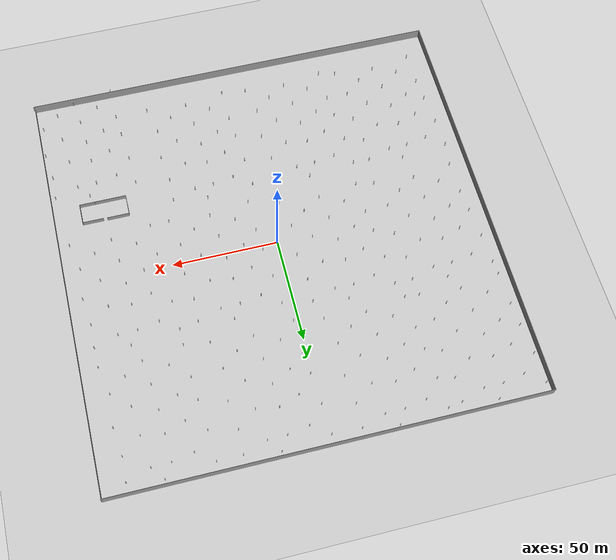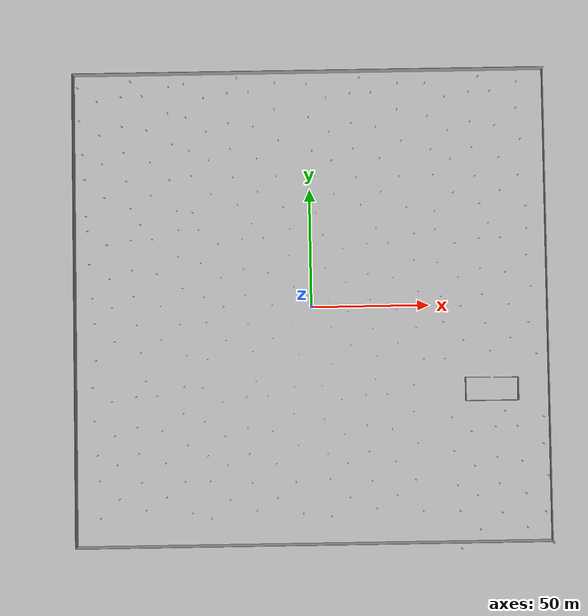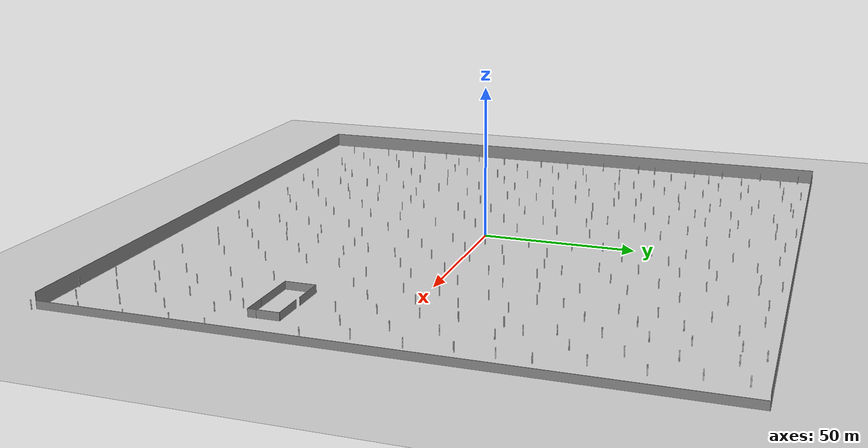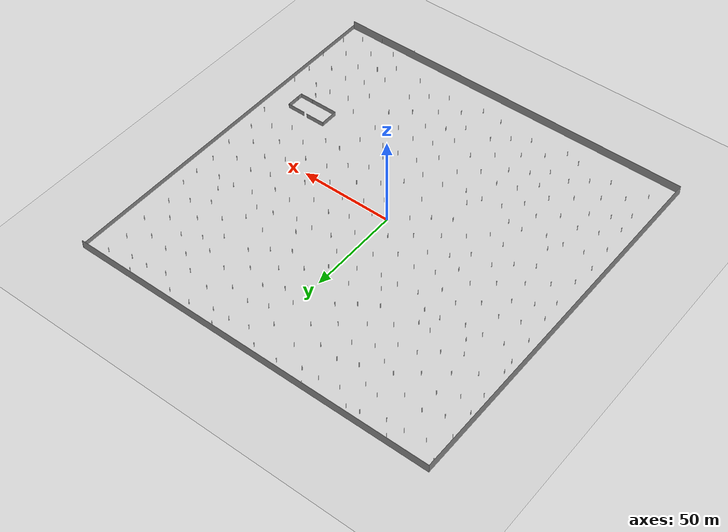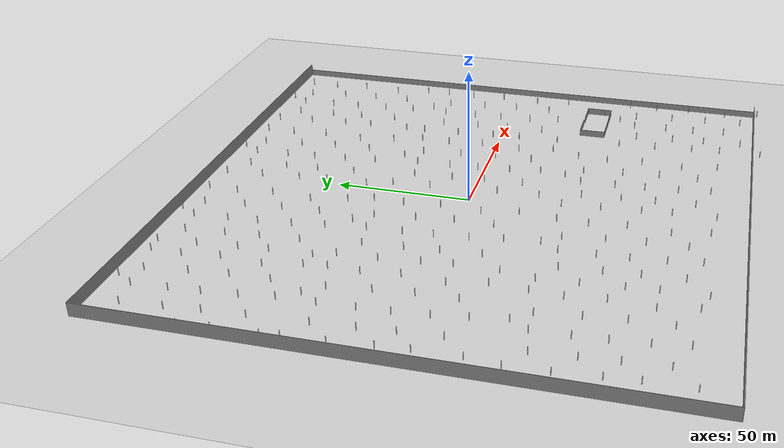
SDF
<sdf version="1.6">
 <world name="default">
  <light name="sun" type="directional">
   <pose>0 0 10 0 -0 0</pose>
   <diffuse>0.8 0.8 0.8 1</diffuse>
   <specular>0.2 0.2 0.2 1</specular>
   <attenuation>
    <range>1000</range>
    <constant>0.9</constant>
    <linear>0.01</linear>
    <quadratic>0.001</quadratic>
   </attenuation>
   <direction>-0.5 0.1 -0.9</direction>
  </light>
  <model name="ground_plane">
   <static>1</static>
   <link name="link">
    <collision name="collision">
     <geometry><plane><normal>0 0 1</normal><size>100 100</size></plane></geometry>
     <surface><friction><ode><mu>100</mu><mu2>50</mu2></ode></friction></surface>
    </collision>
    <visual name="visual">
     <cast_shadows>0</cast_shadows>
     <geometry><plane><normal>0 0 1</normal><size>100 100</size></plane></geometry>
     <material>
      <script><uri>file://media/materials/scripts/gazebo.material</uri><name>Gazebo/Grey</name></script>
     </material>
    </visual>
   </link>
  </model>
  <gravity>0 0 -9.8</gravity>
  <magnetic_field>6e-06 2.3e-05 -4.2e-05</magnetic_field>
  <atmosphere type="adiabatic"/>
  <physics name="default_physics" default="0" type="ode">
   <max_step_size>0.001</max_step_size>
   <real_time_factor>1</real_time_factor>
   <real_time_update_rate>1000</real_time_update_rate>
  </physics>
  <scene><ambient>0.4 0.4 0.4 1</ambient><background>0.7 0.7 0.7 1</background><shadows>1</shadows></scene>
  <audio><device>default</device></audio>
  <spherical_coordinates>
   <surface_model>EARTH_WGS84</surface_model>
   <latitude_deg>0</latitude_deg>
   <longitude_deg>0</longitude_deg>
   <elevation>0</elevation>
   <heading_deg>0</heading_deg>
  </spherical_coordinates>
  <model name="new_200">
   <link name="Wall_0">
    <pose>0 -100 0 0 -0 0</pose>
    <visual name="Wall_0_Visual">
     <pose>0 0 2.5 0 -0 0</pose>
     <geometry><box><size>200.15 0.15 5</size></box></geometry>
     <material>
      <script><uri>file://media/materials/scripts/gazebo.material</uri><name>Gazebo/Grey</name></script>
      <ambient>1 1 1 1</ambient>
     </material>
     <meta><layer>0</layer></meta>
    </visual>
    <collision name="Wall_0_Collision">
     <pose>0 0 2.5 0 -0 0</pose>
     <geometry><box><size>200.15 0.15 5</size></box></geometry>
     <surface>
      <friction>
       <ode><mu>1</mu><mu2>1</mu2><fdir1>0 0 0</fdir1><slip1>0</slip1><slip2>0</slip2></ode>
       <torsional>
        <coefficient>1</coefficient>
        <patch_radius>0</patch_radius>
        <surface_radius>0</surface_radius>
        <use_patch_radius>1</use_patch_radius>
        <ode><slip>0</slip></ode>
       </torsional>
      </friction>
      <bounce><restitution_coefficient>0</restitution_coefficient><threshold>1e+06</threshold></bounce>
      <contact>
       <collide_without_contact>0</collide_without_contact>
       <collide_without_contact_bitmask>1</collide_without_contact_bitmask>
       <collide_bitmask>1</collide_bitmask>
       <ode>
        <soft_cfm>0</soft_cfm>
        <soft_erp>0.2</soft_erp>
        <kp>1e+13</kp>
        <kd>1</kd>
        <max_vel>0.01</max_vel>
        <min_depth>0</min_depth>
       </ode>
       <bullet>
        <split_impulse>1</split_impulse>
        <split_impulse_penetration_threshold>-0.01</split_impulse_penetration_threshold>
        <soft_cfm>0</soft_cfm>
        <soft_erp>0.2</soft_erp>
        <kp>1e+13</kp>
        <kd>1</kd>
       </bullet>
      </contact>
     </surface>
    </collision>
   </link>
   <link name="Wall_2">
    <pose>-100 0 0 0 -0 1.5708</pose>
    <visual name="Wall_2_Visual">
     <pose>0 0 2.5 0 -0 0</pose>
     <geometry><box><size>200.15 0.15 5</size></box></geometry>
     <material>
      <script><uri>file://media/materials/scripts/gazebo.material</uri><name>Gazebo/Grey</name></script>
      <ambient>1 1 1 1</ambient>
     </material>
     <meta><layer>0</layer></meta>
    </visual>
    <collision name="Wall_2_Collision">
     <pose>0 0 2.5 0 -0 0</pose>
     <geometry><box><size>200.15 0.15 5</size></box></geometry>
     <surface>
      <friction>
       <ode><mu>1</mu><mu2>1</mu2><fdir1>0 0 0</fdir1><slip1>0</slip1><slip2>0</slip2></ode>
       <torsional>
        <coefficient>1</coefficient>
        <patch_radius>0</patch_radius>
        <surface_radius>0</surface_radius>
        <use_patch_radius>1</use_patch_radius>
        <ode><slip>0</slip></ode>
       </torsional>
      </friction>
      <bounce><restitution_coefficient>0</restitution_coefficient><threshold>1e+06</threshold></bounce>
      <contact>
       <collide_without_contact>0</collide_without_contact>
       <collide_without_contact_bitmask>1</collide_without_contact_bitmask>
       <collide_bitmask>1</collide_bitmask>
       <ode>
        <soft_cfm>0</soft_cfm>
        <soft_erp>0.2</soft_erp>
        <kp>1e+13</kp>
        <kd>1</kd>
        <max_vel>0.01</max_vel>
        <min_depth>0</min_depth>
       </ode>
       <bullet>
        <split_impulse>1</split_impulse>
        <split_impulse_penetration_threshold>-0.01</split_impulse_penetration_threshold>
        <soft_cfm>0</soft_cfm>
        <soft_erp>0.2</soft_erp>
        <kp>1e+13</kp>
        <kd>1</kd>
       </bullet>
      </contact>
     </surface>
    </collision>
   </link>
   <link name="Wall_4">
    <pose>0 100 0 0 -0 0</pose>
    <visual name="Wall_4_Visual">
     <pose>0 0 2.5 0 -0 0</pose>
     <geometry><box><size>200.15 0.15 5</size></box></geometry>
     <material>
      <script><uri>file://media/materials/scripts/gazebo.material</uri><name>Gazebo/Grey</name></script>
      <ambient>1 1 1 1</ambient>
     </material>
     <meta><layer>0</layer></meta>
    </visual>
    <collision name="Wall_4_Collision">
     <pose>0 0 2.5 0 -0 0</pose>
     <geometry><box><size>200.15 0.15 5</size></box></geometry>
     <surface>
      <friction>
       <ode><mu>1</mu><mu2>1</mu2><fdir1>0 0 0</fdir1><slip1>0</slip1><slip2>0</slip2></ode>
       <torsional>
        <coefficient>1</coefficient>
        <patch_radius>0</patch_radius>
        <surface_radius>0</surface_radius>
        <use_patch_radius>1</use_patch_radius>
        <ode><slip>0</slip></ode>
       </torsional>
      </friction>
      <bounce><restitution_coefficient>0</restitution_coefficient><threshold>1e+06</threshold></bounce>
      <contact>
       <collide_without_contact>0</collide_without_contact>
       <collide_without_contact_bitmask>1</collide_without_contact_bitmask>
       <collide_bitmask>1</collide_bitmask>
       <ode>
        <soft_cfm>0</soft_cfm>
        <soft_erp>0.2</soft_erp>
        <kp>1e+13</kp>
        <kd>1</kd>
        <max_vel>0.01</max_vel>
        <min_depth>0</min_depth>
       </ode>
       <bullet>
        <split_impulse>1</split_impulse>
        <split_impulse_penetration_threshold>-0.01</split_impulse_penetration_threshold>
        <soft_cfm>0</soft_cfm>
        <soft_erp>0.2</soft_erp>
        <kp>1e+13</kp>
        <kd>1</kd>
       </bullet>
      </contact>
     </surface>
    </collision>
   </link>
   <link name="Wall_6">
    <pose>100 0 0 0 -0 1.5708</pose>
    <visual name="Wall_6_Visual">
     <pose>0 0 1.25 0 -0 0</pose>
     <geometry><box><size>200.15 0.15 2.5</size></box></geometry>
     <material>
      <script><uri>file://media/materials/scripts/gazebo.material</uri><name>Gazebo/Grey</name></script>
      <ambient>1 1 1 1</ambient>
     </material>
     <meta><layer>0</layer></meta>
    </visual>
    <collision name="Wall_6_Collision">
     <pose>0 0 1.25 0 -0 0</pose>
     <geometry><box><size>200.15 0.15 2.5</size></box></geometry>
     <surface>
      <friction>
       <ode><mu>1</mu><mu2>1</mu2><fdir1>0 0 0</fdir1><slip1>0</slip1><slip2>0</slip2></ode>
       <torsional>
        <coefficient>1</coefficient>
        <patch_radius>0</patch_radius>
        <surface_radius>0</surface_radius>
        <use_patch_radius>1</use_patch_radius>
        <ode><slip>0</slip></ode>
       </torsional>
      </friction>
      <bounce><restitution_coefficient>0</restitution_coefficient><threshold>1e+06</threshold></bounce>
      <contact>
       <collide_without_contact>0</collide_without_contact>
       <collide_without_contact_bitmask>1</collide_without_contact_bitmask>
       <collide_bitmask>1</collide_bitmask>
       <ode>
        <soft_cfm>0</soft_cfm>
        <soft_erp>0.2</soft_erp>
        <kp>1e+13</kp>
        <kd>1</kd>
        <max_vel>0.01</max_vel>
        <min_depth>0</min_depth>
       </ode>
       <bullet>
        <split_impulse>1</split_impulse>
        <split_impulse_penetration_threshold>-0.01</split_impulse_penetration_threshold>
        <soft_cfm>0</soft_cfm>
        <soft_erp>0.2</soft_erp>
        <kp>1e+13</kp>
        <kd>1</kd>
       </bullet>
      </contact>
     </surface>
    </collision>
   </link>
   <static>1</static>
   <pose>-0.013909 0.3592 0 0 -0 0</pose>
  </model>
  <model name="SparsePillars">
   <link name="up">
    <visual name="visual">
     <geometry>
      <mesh>
       <uri>file:///home/huiyulin/Coding/TARE/multi_planning/Simulator/mrsl2_ws/src/mrsl_quadrotor/mrsl_quadrotor_description/worlds/SparsePillars.dae</uri>
      </mesh>
     </geometry>
    </visual>
    <collision name="pillars">
     <pose>0 0 -0.001 0 -0 0</pose>
     <geometry>
      <mesh>
       <uri>/home/huiyulin/Coding/TARE/multi_planning/Simulator/mrsl2_ws/src/mrsl_quadrotor/mrsl_quadrotor_description/worlds/SparsePillars.dae</uri>
       <scale>1 1 1</scale>
      </mesh>
     </geometry>
     <surface>
      <friction>
       <ode><mu>1</mu><mu2>1</mu2><fdir1>0 0 0</fdir1><slip1>0</slip1><slip2>0</slip2></ode>
       <torsional>
        <coefficient>1</coefficient>
        <patch_radius>0</patch_radius>
        <surface_radius>0</surface_radius>
        <use_patch_radius>1</use_patch_radius>
        <ode><slip>0</slip></ode>
       </torsional>
      </friction>
      <bounce><restitution_coefficient>0</restitution_coefficient><threshold>1e+06</threshold></bounce>
      <contact>
       <collide_without_contact>0</collide_without_contact>
       <collide_without_contact_bitmask>1</collide_without_contact_bitmask>
       <collide_bitmask>1</collide_bitmask>
       <ode>
        <soft_cfm>0</soft_cfm>
        <soft_erp>0.2</soft_erp>
        <kp>1e+13</kp>
        <kd>1</kd>
        <max_vel>0.01</max_vel>
        <min_depth>0</min_depth>
       </ode>
       <bullet>
        <split_impulse>1</split_impulse>
        <split_impulse_penetration_threshold>-0.01</split_impulse_penetration_threshold>
        <soft_cfm>0</soft_cfm>
        <soft_erp>0.2</soft_erp>
        <kp>1e+13</kp>
        <kd>1</kd>
       </bullet>
      </contact>
     </surface>
    </collision>
   </link>
   <static>1</static>
   <pose>-75.2819 63.6921 -1.5 0 -0 0</pose>
  </model>
  <model name="SparsePillars_clone">
   <link name="up">
    <visual name="visual">
     <geometry>
      <mesh>
       <uri>file:///home/huiyulin/Coding/TARE/multi_planning/Simulator/mrsl2_ws/src/mrsl_quadrotor/mrsl_quadrotor_description/worlds/SparsePillars.dae</uri>
      </mesh>
     </geometry>
    </visual>
    <collision name="pillars">
     <pose>0 0 -0.001 0 -0 0</pose>
     <geometry>
      <mesh>
       <uri>/home/huiyulin/Coding/TARE/multi_planning/Simulator/mrsl2_ws/src/mrsl_quadrotor/mrsl_quadrotor_description/worlds/SparsePillars.dae</uri>
       <scale>1 1 1</scale>
      </mesh>
     </geometry>
     <surface>
      <friction>
       <ode><mu>1</mu><mu2>1</mu2><fdir1>0 0 0</fdir1><slip1>0</slip1><slip2>0</slip2></ode>
       <torsional>
        <coefficient>1</coefficient>
        <patch_radius>0</patch_radius>
        <surface_radius>0</surface_radius>
        <use_patch_radius>1</use_patch_radius>
        <ode><slip>0</slip></ode>
       </torsional>
      </friction>
      <bounce><restitution_coefficient>0</restitution_coefficient><threshold>1e+06</threshold></bounce>
      <contact>
       <collide_without_contact>0</collide_without_contact>
       <collide_without_contact_bitmask>1</collide_without_contact_bitmask>
       <collide_bitmask>1</collide_bitmask>
       <ode>
        <soft_cfm>0</soft_cfm>
        <soft_erp>0.2</soft_erp>
        <kp>1e+13</kp>
        <kd>1</kd>
        <max_vel>0.01</max_vel>
        <min_depth>0</min_depth>
       </ode>
       <bullet>
        <split_impulse>1</split_impulse>
        <split_impulse_penetration_threshold>-0.01</split_impulse_penetration_threshold>
        <soft_cfm>0</soft_cfm>
        <soft_erp>0.2</soft_erp>
        <kp>1e+13</kp>
        <kd>1</kd>
       </bullet>
      </contact>
     </surface>
    </collision>
   </link>
   <static>1</static>
   <pose>-29.8751 64.665 -1.5 0 -0 0</pose>
  </model>
  <model name="SparsePillars_clone_0">
   <link name="up">
    <visual name="visual">
     <geometry>
      <mesh>
       <uri>file:///home/huiyulin/Coding/TARE/multi_planning/Simulator/mrsl2_ws/src/mrsl_quadrotor/mrsl_quadrotor_description/worlds/SparsePillars.dae</uri>
      </mesh>
     </geometry>
    </visual>
    <collision name="pillars">
     <pose>0 0 -0.001 0 -0 0</pose>
     <geometry>
      <mesh>
       <uri>/home/huiyulin/Coding/TARE/multi_planning/Simulator/mrsl2_ws/src/mrsl_quadrotor/mrsl_quadrotor_description/worlds/SparsePillars.dae</uri>
       <scale>1 1 1</scale>
      </mesh>
     </geometry>
     <surface>
      <friction>
       <ode><mu>1</mu><mu2>1</mu2><fdir1>0 0 0</fdir1><slip1>0</slip1><slip2>0</slip2></ode>
       <torsional>
        <coefficient>1</coefficient>
        <patch_radius>0</patch_radius>
        <surface_radius>0</surface_radius>
        <use_patch_radius>1</use_patch_radius>
        <ode><slip>0</slip></ode>
       </torsional>
      </friction>
      <bounce><restitution_coefficient>0</restitution_coefficient><threshold>1e+06</threshold></bounce>
      <contact>
       <collide_without_contact>0</collide_without_contact>
       <collide_without_contact_bitmask>1</collide_without_contact_bitmask>
       <collide_bitmask>1</collide_bitmask>
       <ode>
        <soft_cfm>0</soft_cfm>
        <soft_erp>0.2</soft_erp>
        <kp>1e+13</kp>
        <kd>1</kd>
        <max_vel>0.01</max_vel>
        <min_depth>0</min_depth>
       </ode>
       <bullet>
        <split_impulse>1</split_impulse>
        <split_impulse_penetration_threshold>-0.01</split_impulse_penetration_threshold>
        <soft_cfm>0</soft_cfm>
        <soft_erp>0.2</soft_erp>
        <kp>1e+13</kp>
        <kd>1</kd>
       </bullet>
      </contact>
     </surface>
    </collision>
   </link>
   <static>1</static>
   <pose>22.5206 63.8598 -1.5 0 -0 0</pose>
  </model>
  <model name="SparsePillars_clone_1">
   <link name="up">
    <visual name="visual">
     <geometry>
      <mesh>
       <uri>file:///home/huiyulin/Coding/TARE/multi_planning/Simulator/mrsl2_ws/src/mrsl_quadrotor/mrsl_quadrotor_description/worlds/SparsePillars.dae</uri>
      </mesh>
     </geometry>
    </visual>
    <collision name="pillars">
     <pose>0 0 -0.001 0 -0 0</pose>
     <geometry>
      <mesh>
       <uri>/home/huiyulin/Coding/TARE/multi_planning/Simulator/mrsl2_ws/src/mrsl_quadrotor/mrsl_quadrotor_description/worlds/SparsePillars.dae</uri>
       <scale>1 1 1</scale>
      </mesh>
     </geometry>
     <surface>
      <friction>
       <ode><mu>1</mu><mu2>1</mu2><fdir1>0 0 0</fdir1><slip1>0</slip1><slip2>0</slip2></ode>
       <torsional>
        <coefficient>1</coefficient>
        <patch_radius>0</patch_radius>
        <surface_radius>0</surface_radius>
        <use_patch_radius>1</use_patch_radius>
        <ode><slip>0</slip></ode>
       </torsional>
      </friction>
      <bounce><restitution_coefficient>0</restitution_coefficient><threshold>1e+06</threshold></bounce>
      <contact>
       <collide_without_contact>0</collide_without_contact>
       <collide_without_contact_bitmask>1</collide_without_contact_bitmask>
       <collide_bitmask>1</collide_bitmask>
       <ode>
        <soft_cfm>0</soft_cfm>
        <soft_erp>0.2</soft_erp>
        <kp>1e+13</kp>
        <kd>1</kd>
        <max_vel>0.01</max_vel>
        <min_depth>0</min_depth>
       </ode>
       <bullet>
        <split_impulse>1</split_impulse>
        <split_impulse_penetration_threshold>-0.01</split_impulse_penetration_threshold>
        <soft_cfm>0</soft_cfm>
        <soft_erp>0.2</soft_erp>
        <kp>1e+13</kp>
        <kd>1</kd>
       </bullet>
      </contact>
     </surface>
    </collision>
   </link>
   <static>1</static>
   <pose>73.1863 63.6878 -1.5 0 -0 0</pose>
  </model>
  <model name="SparsePillars_clone_2">
   <link name="up">
    <visual name="visual">
     <geometry>
      <mesh>
       <uri>file:///home/huiyulin/Coding/TARE/multi_planning/Simulator/mrsl2_ws/src/mrsl_quadrotor/mrsl_quadrotor_description/worlds/SparsePillars.dae</uri>
      </mesh>
     </geometry>
    </visual>
    <collision name="pillars">
     <pose>0 0 -0.001 0 -0 0</pose>
     <geometry>
      <mesh>
       <uri>/home/huiyulin/Coding/TARE/multi_planning/Simulator/mrsl2_ws/src/mrsl_quadrotor/mrsl_quadrotor_description/worlds/SparsePillars.dae</uri>
       <scale>1 1 1</scale>
      </mesh>
     </geometry>
     <surface>
      <friction>
       <ode><mu>1</mu><mu2>1</mu2><fdir1>0 0 0</fdir1><slip1>0</slip1><slip2>0</slip2></ode>
       <torsional>
        <coefficient>1</coefficient>
        <patch_radius>0</patch_radius>
        <surface_radius>0</surface_radius>
        <use_patch_radius>1</use_patch_radius>
        <ode><slip>0</slip></ode>
       </torsional>
      </friction>
      <bounce><restitution_coefficient>0</restitution_coefficient><threshold>1e+06</threshold></bounce>
      <contact>
       <collide_without_contact>0</collide_without_contact>
       <collide_without_contact_bitmask>1</collide_without_contact_bitmask>
       <collide_bitmask>1</collide_bitmask>
       <ode>
        <soft_cfm>0</soft_cfm>
        <soft_erp>0.2</soft_erp>
        <kp>1e+13</kp>
        <kd>1</kd>
        <max_vel>0.01</max_vel>
        <min_depth>0</min_depth>
       </ode>
       <bullet>
        <split_impulse>1</split_impulse>
        <split_impulse_penetration_threshold>-0.01</split_impulse_penetration_threshold>
        <soft_cfm>0</soft_cfm>
        <soft_erp>0.2</soft_erp>
        <kp>1e+13</kp>
        <kd>1</kd>
       </bullet>
      </contact>
     </surface>
    </collision>
   </link>
   <static>1</static>
   <pose>76.3729 0.884439 -1.5 0 -0 0</pose>
  </model>
  <model name="SparsePillars_clone_3">
   <link name="up">
    <visual name="visual">
     <geometry>
      <mesh>
       <uri>file:///home/huiyulin/Coding/TARE/multi_planning/Simulator/mrsl2_ws/src/mrsl_quadrotor/mrsl_quadrotor_description/worlds/SparsePillars.dae</uri>
      </mesh>
     </geometry>
    </visual>
    <collision name="pillars">
     <pose>0 0 -0.001 0 -0 0</pose>
     <geometry>
      <mesh>
       <uri>/home/huiyulin/Coding/TARE/multi_planning/Simulator/mrsl2_ws/src/mrsl_quadrotor/mrsl_quadrotor_description/worlds/SparsePillars.dae</uri>
       <scale>1 1 1</scale>
      </mesh>
     </geometry>
     <surface>
      <friction>
       <ode><mu>1</mu><mu2>1</mu2><fdir1>0 0 0</fdir1><slip1>0</slip1><slip2>0</slip2></ode>
       <torsional>
        <coefficient>1</coefficient>
        <patch_radius>0</patch_radius>
        <surface_radius>0</surface_radius>
        <use_patch_radius>1</use_patch_radius>
        <ode><slip>0</slip></ode>
       </torsional>
      </friction>
      <bounce><restitution_coefficient>0</restitution_coefficient><threshold>1e+06</threshold></bounce>
      <contact>
       <collide_without_contact>0</collide_without_contact>
       <collide_without_contact_bitmask>1</collide_without_contact_bitmask>
       <collide_bitmask>1</collide_bitmask>
       <ode>
        <soft_cfm>0</soft_cfm>
        <soft_erp>0.2</soft_erp>
        <kp>1e+13</kp>
        <kd>1</kd>
        <max_vel>0.01</max_vel>
        <min_depth>0</min_depth>
       </ode>
       <bullet>
        <split_impulse>1</split_impulse>
        <split_impulse_penetration_threshold>-0.01</split_impulse_penetration_threshold>
        <soft_cfm>0</soft_cfm>
        <soft_erp>0.2</soft_erp>
        <kp>1e+13</kp>
        <kd>1</kd>
       </bullet>
      </contact>
     </surface>
    </collision>
   </link>
   <static>1</static>
   <pose>28.6704 -0.689397 -1.5 0 -0 0</pose>
  </model>
  <model name="SparsePillars_clone_4">
   <link name="up">
    <visual name="visual">
     <geometry>
      <mesh>
       <uri>file:///home/huiyulin/Coding/TARE/multi_planning/Simulator/mrsl2_ws/src/mrsl_quadrotor/mrsl_quadrotor_description/worlds/SparsePillars.dae</uri>
      </mesh>
     </geometry>
    </visual>
    <collision name="pillars">
     <pose>0 0 -0.001 0 -0 0</pose>
     <geometry>
      <mesh>
       <uri>/home/huiyulin/Coding/TARE/multi_planning/Simulator/mrsl2_ws/src/mrsl_quadrotor/mrsl_quadrotor_description/worlds/SparsePillars.dae</uri>
       <scale>1 1 1</scale>
      </mesh>
     </geometry>
     <surface>
      <friction>
       <ode><mu>1</mu><mu2>1</mu2><fdir1>0 0 0</fdir1><slip1>0</slip1><slip2>0</slip2></ode>
       <torsional>
        <coefficient>1</coefficient>
        <patch_radius>0</patch_radius>
        <surface_radius>0</surface_radius>
        <use_patch_radius>1</use_patch_radius>
        <ode><slip>0</slip></ode>
       </torsional>
      </friction>
      <bounce><restitution_coefficient>0</restitution_coefficient><threshold>1e+06</threshold></bounce>
      <contact>
       <collide_without_contact>0</collide_without_contact>
       <collide_without_contact_bitmask>1</collide_without_contact_bitmask>
       <collide_bitmask>1</collide_bitmask>
       <ode>
        <soft_cfm>0</soft_cfm>
        <soft_erp>0.2</soft_erp>
        <kp>1e+13</kp>
        <kd>1</kd>
        <max_vel>0.01</max_vel>
        <min_depth>0</min_depth>
       </ode>
       <bullet>
        <split_impulse>1</split_impulse>
        <split_impulse_penetration_threshold>-0.01</split_impulse_penetration_threshold>
        <soft_cfm>0</soft_cfm>
        <soft_erp>0.2</soft_erp>
        <kp>1e+13</kp>
        <kd>1</kd>
       </bullet>
      </contact>
     </surface>
    </collision>
   </link>
   <static>1</static>
   <pose>27.3242 -64.83 -1.5 0 -0 0</pose>
  </model>
  <model name="SparsePillars_clone_5">
   <link name="up">
    <visual name="visual">
     <geometry>
      <mesh>
       <uri>file:///home/huiyulin/Coding/TARE/multi_planning/Simulator/mrsl2_ws/src/mrsl_quadrotor/mrsl_quadrotor_description/worlds/SparsePillars.dae</uri>
      </mesh>
     </geometry>
    </visual>
    <collision name="pillars">
     <pose>0 0 -0.001 0 -0 0</pose>
     <geometry>
      <mesh>
       <uri>/home/huiyulin/Coding/TARE/multi_planning/Simulator/mrsl2_ws/src/mrsl_quadrotor/mrsl_quadrotor_description/worlds/SparsePillars.dae</uri>
       <scale>1 1 1</scale>
      </mesh>
     </geometry>
     <surface>
      <friction>
       <ode><mu>1</mu><mu2>1</mu2><fdir1>0 0 0</fdir1><slip1>0</slip1><slip2>0</slip2></ode>
       <torsional>
        <coefficient>1</coefficient>
        <patch_radius>0</patch_radius>
        <surface_radius>0</surface_radius>
        <use_patch_radius>1</use_patch_radius>
        <ode><slip>0</slip></ode>
       </torsional>
      </friction>
      <bounce><restitution_coefficient>0</restitution_coefficient><threshold>1e+06</threshold></bounce>
      <contact>
       <collide_without_contact>0</collide_without_contact>
       <collide_without_contact_bitmask>1</collide_without_contact_bitmask>
       <collide_bitmask>1</collide_bitmask>
       <ode>
        <soft_cfm>0</soft_cfm>
        <soft_erp>0.2</soft_erp>
        <kp>1e+13</kp>
        <kd>1</kd>
        <max_vel>0.01</max_vel>
        <min_depth>0</min_depth>
       </ode>
       <bullet>
        <split_impulse>1</split_impulse>
        <split_impulse_penetration_threshold>-0.01</split_impulse_penetration_threshold>
        <soft_cfm>0</soft_cfm>
        <soft_erp>0.2</soft_erp>
        <kp>1e+13</kp>
        <kd>1</kd>
       </bullet>
      </contact>
     </surface>
    </collision>
   </link>
   <static>1</static>
   <pose>-71.5052 2.24637 -1.5 0 -0 0</pose>
  </model>
  <model name="SparsePillars_clone_6">
   <link name="up">
    <visual name="visual">
     <geometry>
      <mesh>
       <uri>file:///home/huiyulin/Coding/TARE/multi_planning/Simulator/mrsl2_ws/src/mrsl_quadrotor/mrsl_quadrotor_description/worlds/SparsePillars.dae</uri>
      </mesh>
     </geometry>
    </visual>
    <collision name="pillars">
     <pose>0 0 -0.001 0 -0 0</pose>
     <geometry>
      <mesh>
       <uri>/home/huiyulin/Coding/TARE/multi_planning/Simulator/mrsl2_ws/src/mrsl_quadrotor/mrsl_quadrotor_description/worlds/SparsePillars.dae</uri>
       <scale>1 1 1</scale>
      </mesh>
     </geometry>
     <surface>
      <friction>
       <ode><mu>1</mu><mu2>1</mu2><fdir1>0 0 0</fdir1><slip1>0</slip1><slip2>0</slip2></ode>
       <torsional>
        <coefficient>1</coefficient>
        <patch_radius>0</patch_radius>
        <surface_radius>0</surface_radius>
        <use_patch_radius>1</use_patch_radius>
        <ode><slip>0</slip></ode>
       </torsional>
      </friction>
      <bounce><restitution_coefficient>0</restitution_coefficient><threshold>1e+06</threshold></bounce>
      <contact>
       <collide_without_contact>0</collide_without_contact>
       <collide_without_contact_bitmask>1</collide_without_contact_bitmask>
       <collide_bitmask>1</collide_bitmask>
       <ode>
        <soft_cfm>0</soft_cfm>
        <soft_erp>0.2</soft_erp>
        <kp>1e+13</kp>
        <kd>1</kd>
        <max_vel>0.01</max_vel>
        <min_depth>0</min_depth>
       </ode>
       <bullet>
        <split_impulse>1</split_impulse>
        <split_impulse_penetration_threshold>-0.01</split_impulse_penetration_threshold>
        <soft_cfm>0</soft_cfm>
        <soft_erp>0.2</soft_erp>
        <kp>1e+13</kp>
        <kd>1</kd>
       </bullet>
      </contact>
     </surface>
    </collision>
   </link>
   <static>1</static>
   <pose>-24.2202 2.11846 -1.5 0 -0 0</pose>
  </model>
  <model name="SparsePillars_clone_7">
   <link name="up">
    <visual name="visual">
     <geometry>
      <mesh>
       <uri>file:///home/huiyulin/Coding/TARE/multi_planning/Simulator/mrsl2_ws/src/mrsl_quadrotor/mrsl_quadrotor_description/worlds/SparsePillars.dae</uri>
      </mesh>
     </geometry>
    </visual>
    <collision name="pillars">
     <pose>0 0 -0.001 0 -0 0</pose>
     <geometry>
      <mesh>
       <uri>/home/huiyulin/Coding/TARE/multi_planning/Simulator/mrsl2_ws/src/mrsl_quadrotor/mrsl_quadrotor_description/worlds/SparsePillars.dae</uri>
       <scale>1 1 1</scale>
      </mesh>
     </geometry>
     <surface>
      <friction>
       <ode><mu>1</mu><mu2>1</mu2><fdir1>0 0 0</fdir1><slip1>0</slip1><slip2>0</slip2></ode>
       <torsional>
        <coefficient>1</coefficient>
        <patch_radius>0</patch_radius>
        <surface_radius>0</surface_radius>
        <use_patch_radius>1</use_patch_radius>
        <ode><slip>0</slip></ode>
       </torsional>
      </friction>
      <bounce><restitution_coefficient>0</restitution_coefficient><threshold>1e+06</threshold></bounce>
      <contact>
       <collide_without_contact>0</collide_without_contact>
       <collide_without_contact_bitmask>1</collide_without_contact_bitmask>
       <collide_bitmask>1</collide_bitmask>
       <ode>
        <soft_cfm>0</soft_cfm>
        <soft_erp>0.2</soft_erp>
        <kp>1e+13</kp>
        <kd>1</kd>
        <max_vel>0.01</max_vel>
        <min_depth>0</min_depth>
       </ode>
       <bullet>
        <split_impulse>1</split_impulse>
        <split_impulse_penetration_threshold>-0.01</split_impulse_penetration_threshold>
        <soft_cfm>0</soft_cfm>
        <soft_erp>0.2</soft_erp>
        <kp>1e+13</kp>
        <kd>1</kd>
       </bullet>
      </contact>
     </surface>
    </collision>
   </link>
   <static>1</static>
   <pose>-69.8946 -64.2348 -1.5 0 -0 0</pose>
  </model>
  <model name="SparsePillars_clone_8">
   <link name="up">
    <visual name="visual">
     <geometry>
      <mesh>
       <uri>file:///home/huiyulin/Coding/TARE/multi_planning/Simulator/mrsl2_ws/src/mrsl_quadrotor/mrsl_quadrotor_description/worlds/SparsePillars.dae</uri>
      </mesh>
     </geometry>
    </visual>
    <collision name="pillars">
     <pose>0 0 -0.001 0 -0 0</pose>
     <geometry>
      <mesh>
       <uri>/home/huiyulin/Coding/TARE/multi_planning/Simulator/mrsl2_ws/src/mrsl_quadrotor/mrsl_quadrotor_description/worlds/SparsePillars.dae</uri>
       <scale>1 1 1</scale>
      </mesh>
     </geometry>
     <surface>
      <friction>
       <ode><mu>1</mu><mu2>1</mu2><fdir1>0 0 0</fdir1><slip1>0</slip1><slip2>0</slip2></ode>
       <torsional>
        <coefficient>1</coefficient>
        <patch_radius>0</patch_radius>
        <surface_radius>0</surface_radius>
        <use_patch_radius>1</use_patch_radius>
        <ode><slip>0</slip></ode>
       </torsional>
      </friction>
      <bounce><restitution_coefficient>0</restitution_coefficient><threshold>1e+06</threshold></bounce>
      <contact>
       <collide_without_contact>0</collide_without_contact>
       <collide_without_contact_bitmask>1</collide_without_contact_bitmask>
       <collide_bitmask>1</collide_bitmask>
       <ode>
        <soft_cfm>0</soft_cfm>
        <soft_erp>0.2</soft_erp>
        <kp>1e+13</kp>
        <kd>1</kd>
        <max_vel>0.01</max_vel>
        <min_depth>0</min_depth>
       </ode>
       <bullet>
        <split_impulse>1</split_impulse>
        <split_impulse_penetration_threshold>-0.01</split_impulse_penetration_threshold>
        <soft_cfm>0</soft_cfm>
        <soft_erp>0.2</soft_erp>
        <kp>1e+13</kp>
        <kd>1</kd>
       </bullet>
      </contact>
     </surface>
    </collision>
   </link>
   <static>1</static>
   <pose>-23.2324 -64.9946 -1.5 0 -0 0</pose>
  </model>
  <model name="Cangku">
   <pose>75.8664 -35.7057 0 0 -0 0</pose>
   <link name="Wall_0">
    <collision name="Wall_0_Collision">
     <geometry><box><size>15 0.15 2.5</size></box></geometry>
     <pose>0 0 1.25 0 -0 0</pose>
    </collision>
    <visual name="Wall_0_Visual">
     <pose>0 0 1.25 0 -0 0</pose>
     <geometry><box><size>15 0.15 2.5</size></box></geometry>
     <material>
      <script><uri>file://media/materials/scripts/gazebo.material</uri><name>Gazebo/Grey</name></script>
      <ambient>1 1 1 1</ambient>
     </material>
     <meta><layer>0</layer></meta>
    </visual>
    <pose>-3.675 -4.925 0 0 -0 0</pose>
   </link>
   <link name="Wall_1">
    <collision name="Wall_1_Collision">
     <geometry><box><size>7.5 0.15 2.5</size></box></geometry>
     <pose>0 0 1.25 0 -0 0</pose>
    </collision>
    <visual name="Wall_1_Visual">
     <pose>0 0 1.25 0 -0 0</pose>
     <geometry><box><size>7.5 0.15 2.5</size></box></geometry>
     <material>
      <script><uri>file://media/materials/scripts/gazebo.material</uri><name>Gazebo/Grey</name></script>
      <ambient>1 1 1 1</ambient>
     </material>
     <meta><layer>0</layer></meta>
    </visual>
    <pose>7.425 -4.925 0 0 -0 0</pose>
   </link>
   <link name="Wall_10">
    <collision name="Wall_10_Collision">
     <geometry><box><size>0.15 0.15 2.5</size></box></geometry>
     <pose>0 0 1.25 0 -0 0</pose>
    </collision>
    <visual name="Wall_10_Visual">
     <pose>0 0 1.25 0 -0 0</pose>
     <geometry><box><size>0.15 0.15 2.5</size></box></geometry>
     <material>
      <script><uri>file://media/materials/scripts/gazebo.material</uri><name>Gazebo/Grey</name></script>
      <ambient>1 1 1 1</ambient>
     </material>
     <meta><layer>0</layer></meta>
    </visual>
    <pose>-11.1 4.675 0 0 -0 0</pose>
   </link>
   <link name="Wall_11">
    <collision name="Wall_11_Collision">
     <geometry><box><size>0.15 0.15 2.5</size></box></geometry>
     <pose>0 0 1.25 0 -0 0</pose>
    </collision>
    <visual name="Wall_11_Visual">
     <pose>0 0 1.25 0 -0 0</pose>
     <geometry><box><size>0.15 0.15 2.5</size></box></geometry>
     <material>
      <script><uri>file://media/materials/scripts/gazebo.material</uri><name>Gazebo/Grey</name></script>
      <ambient>1 1 1 1</ambient>
     </material>
     <meta><layer>0</layer></meta>
    </visual>
    <pose>-11.1 4.675 0 0 -0 0</pose>
   </link>
   <link name="Wall_12">
    <collision name="Wall_12_Collision">
     <geometry><box><size>0.15 0.15 2.5</size></box></geometry>
     <pose>0 0 1.25 0 -0 0</pose>
    </collision>
    <visual name="Wall_12_Visual">
     <pose>0 0 1.25 0 -0 0</pose>
     <geometry><box><size>0.15 0.15 2.5</size></box></geometry>
     <material>
      <script><uri>file://media/materials/scripts/gazebo.material</uri><name>Gazebo/Grey</name></script>
      <ambient>1 1 1 1</ambient>
     </material>
     <meta><layer>0</layer></meta>
    </visual>
    <pose>-11.1 4.675 0 0 -0 0</pose>
   </link>
   <link name="Wall_14">
    <collision name="Wall_14_Collision">
     <geometry><box><size>10 0.15 2.5</size></box></geometry>
     <pose>0 0 1.25 0 -0 0</pose>
    </collision>
    <visual name="Wall_14_Visual">
     <pose>0 0 1.25 0 -0 0</pose>
     <geometry><box><size>10 0.15 2.5</size></box></geometry>
     <material>
      <script><uri>file://media/materials/scripts/gazebo.material</uri><name>Gazebo/Grey</name></script>
      <ambient>1 1 1 1</ambient>
     </material>
     <meta><layer>0</layer></meta>
    </visual>
    <pose>-11.1 -0 0 0 -0 1.5708</pose>
   </link>
   <link name="Wall_2">
    <collision name="Wall_2_Collision">
     <geometry><box><size>2.75 0.15 2.5</size></box></geometry>
     <pose>0 0 1.25 0 -0 0</pose>
    </collision>
    <visual name="Wall_2_Visual">
     <pose>0 0 1.25 0 -0 0</pose>
     <geometry><box><size>2.75 0.15 2.5</size></box></geometry>
     <material>
      <script><uri>file://media/materials/scripts/gazebo.material</uri><name>Gazebo/Grey</name></script>
      <ambient>1 1 1 1</ambient>
     </material>
     <meta><layer>0</layer></meta>
    </visual>
    <pose>11.1 -3.625 0 0 -0 1.5708</pose>
   </link>
   <link name="Wall_21">
    <collision name="Wall_21_Collision">
     <geometry><box><size>7.25 0.15 2.5</size></box></geometry>
     <pose>0 0 1.25 0 -0 0</pose>
    </collision>
    <visual name="Wall_21_Visual">
     <pose>0 0 1.25 0 -0 0</pose>
     <geometry><box><size>7.25 0.15 2.5</size></box></geometry>
     <material>
      <script><uri>file://media/materials/scripts/gazebo.material</uri><name>Gazebo/Grey</name></script>
      <ambient>1 1 1 1</ambient>
     </material>
     <meta><layer>0</layer></meta>
    </visual>
    <pose>11.1 1.225 0 0 -0 1.5708</pose>
   </link>
   <link name="Wall_22">
    <collision name="Wall_22_Collision">
     <geometry><box><size>10 0.15 2.5</size></box></geometry>
     <pose>0 0 1.25 0 -0 0</pose>
    </collision>
    <visual name="Wall_22_Visual">
     <pose>0 0 1.25 0 -0 0</pose>
     <geometry><box><size>10 0.15 2.5</size></box></geometry>
     <material>
      <script><uri>file://media/materials/scripts/gazebo.material</uri><name>Gazebo/Grey</name></script>
      <ambient>1 1 1 1</ambient>
     </material>
     <meta><layer>0</layer></meta>
    </visual>
    <pose>6.175 4.775 0 0 -0 3.14159</pose>
   </link>
   <link name="Wall_24">
    <collision name="Wall_24_Collision">
     <geometry><box><size>10.5 0.15 2.5</size></box></geometry>
     <pose>0 0 1.25 0 -0 0</pose>
    </collision>
    <visual name="Wall_24_Visual">
     <pose>0 0 1.25 0 -0 0</pose>
     <geometry><box><size>10.5 0.15 2.5</size></box></geometry>
     <material>
      <script><uri>file://media/materials/scripts/gazebo.material</uri><name>Gazebo/Grey</name></script>
      <ambient>1 1 1 1</ambient>
     </material>
     <meta><layer>0</layer></meta>
    </visual>
    <pose>-5.925 4.925 0 0 -0 0</pose>
   </link>
   <link name="Wall_9">
    <collision name="Wall_9_Collision">
     <geometry><box><size>0.15 0.15 2.5</size></box></geometry>
     <pose>0 0 1.25 0 -0 0</pose>
    </collision>
    <visual name="Wall_9_Visual">
     <pose>0 0 1.25 0 -0 0</pose>
     <geometry><box><size>0.15 0.15 2.5</size></box></geometry>
     <material>
      <script><uri>file://media/materials/scripts/gazebo.material</uri><name>Gazebo/Grey</name></script>
      <ambient>1 1 1 1</ambient>
     </material>
     <meta><layer>0</layer></meta>
    </visual>
    <pose>-11.1 4.675 0 0 -0 0</pose>
   </link>
   <static>1</static>
  </model>
  <model name="SparsePillars_clone_9">
   <link name="up">
    <visual name="visual">
     <geometry>
      <mesh>
       <uri>file:///home/huiyulin/Coding/TARE/multi_planning/Simulator/mrsl2_ws/src/mrsl_quadrotor/mrsl_quadrotor_description/worlds/SparsePillars.dae</uri>
      </mesh>
     </geometry>
    </visual>
    <collision name="pillars">
     <pose>0 0 -0.001 0 -0 0</pose>
     <geometry>
      <mesh>
       <uri>/home/huiyulin/Coding/TARE/multi_planning/Simulator/mrsl2_ws/src/mrsl_quadrotor/mrsl_quadrotor_description/worlds/SparsePillars.dae</uri>
       <scale>1 1 1</scale>
      </mesh>
     </geometry>
     <surface>
      <friction>
       <ode><mu>1</mu><mu2>1</mu2><fdir1>0 0 0</fdir1><slip1>0</slip1><slip2>0</slip2></ode>
       <torsional>
        <coefficient>1</coefficient>
        <patch_radius>0</patch_radius>
        <surface_radius>0</surface_radius>
        <use_patch_radius>1</use_patch_radius>
        <ode><slip>0</slip></ode>
       </torsional>
      </friction>
      <bounce><restitution_coefficient>0</restitution_coefficient><threshold>1e+06</threshold></bounce>
      <contact>
       <collide_without_contact>0</collide_without_contact>
       <collide_without_contact_bitmask>1</collide_without_contact_bitmask>
       <collide_bitmask>1</collide_bitmask>
       <ode>
        <soft_cfm>0</soft_cfm>
        <soft_erp>0.2</soft_erp>
        <kp>1e+13</kp>
        <kd>1</kd>
        <max_vel>0.01</max_vel>
        <min_depth>0</min_depth>
       </ode>
       <bullet>
        <split_impulse>1</split_impulse>
        <split_impulse_penetration_threshold>-0.01</split_impulse_penetration_threshold>
        <soft_cfm>0</soft_cfm>
        <soft_erp>0.2</soft_erp>
        <kp>1e+13</kp>
        <kd>1</kd>
       </bullet>
      </contact>
     </surface>
    </collision>
   </link>
   <static>1</static>
   <pose>81.9966 -79.0233 -1.5 0 -0 0</pose>
  </model>
 </world>
</sdf>
